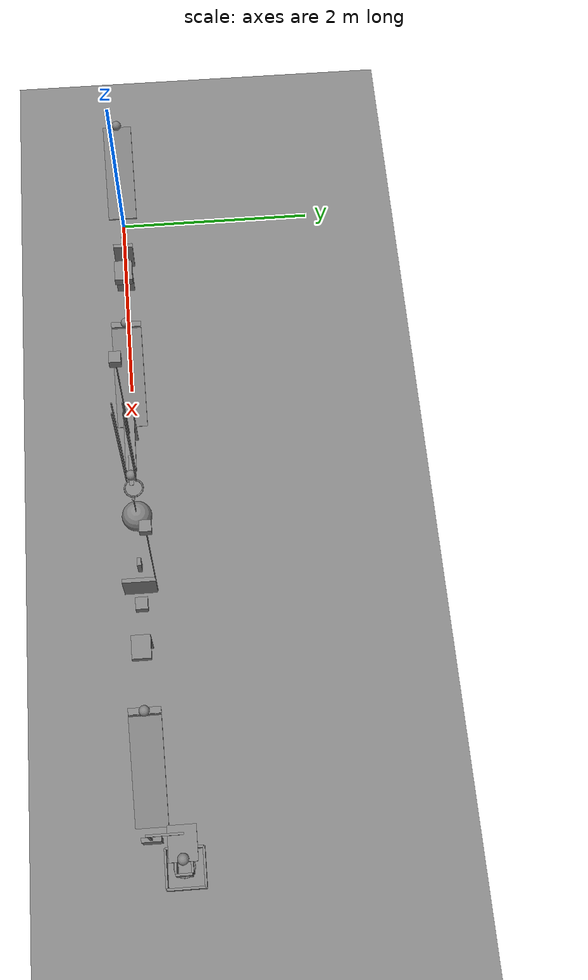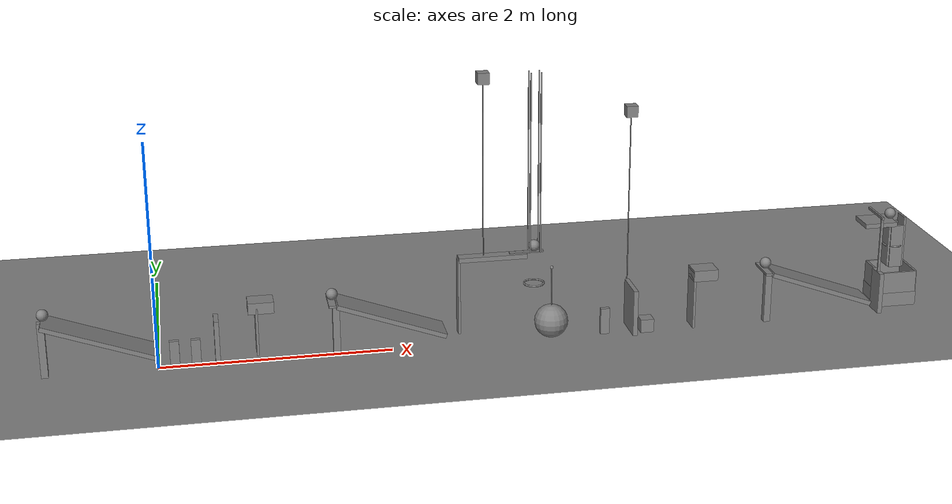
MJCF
<mujoco model="revised_passive_ramp_and_pendulum_chain">
  <compiler angle="radian"/>
  <option timestep="0.002"/>
  <worldbody>
    <geom name="floor" type="plane" size="18 18 0.1" friction="0.7 0 0"/>
    <body name="ramp1">
      <geom name="ramp1_deck" type="box" pos="-0.469846 0 0.32101" size="0.5 0.15 0.02" euler="0 0.349066 0" friction="0.7 0 0" solref="0.01 0.690107"/>
      <geom name="ramp1_leg" type="box" pos="-0.939693 0 0.24601" size="0.03 0.03 0.24601" friction="0.7 0 0" solref="0.01 0.690107"/>
    </body>
    <body name="ball1" pos="-0.915751 0 0.557799">
      <freejoint/>
      <geom name="ball1" type="sphere" pos="0 0 0" size="0.05" mass="0.2" condim="6" friction="0.7 0 0" solref="0.01 0.690107"/>
    </body>
    <body name="domino1" pos="0.14 0 0.12">
      <freejoint/>
      <geom name="domino1" type="box" pos="0 0 0" size="0.04 0.02 0.12" mass="0.25" friction="0.7 0 0" solref="0.01 0.690107"/>
    </body>
    <body name="domino2" pos="0.32 0 0.12">
      <freejoint/>
      <geom name="domino2" type="box" pos="0 0 0" size="0.04 0.02 0.12" mass="0.25" friction="0.7 0 0" solref="0.01 0.690107"/>
    </body>
    <body name="flap1" pos="0.5 0 0.02">
      <joint name="flap1_hinge" type="hinge" pos="0 0 0" axis="0 1 0" limited="true" range="0 1.13446" damping="0.04"/>
      <geom name="flap1" type="box" pos="0 0 0.2" size="0.02 0.1 0.2" mass="0.3" friction="0.7 0 0" solref="0.01 0.690107"/>
    </body>
    <body name="cart1" pos="0.88 0 0.510815">
      <joint name="cart1_slide" type="slide" pos="0 0 0" axis="1 0 0" limited="true" range="0 0.6" damping="0.2"/>
      <geom name="cart1" type="box" pos="0 0 0" size="0.11 0.09 0.05" mass="0.49" friction="0.7 0 0" solref="0.01 0.690107"/>
      <geom name="cart1 striker" type="box" pos="-0.04 0 -0.215815" size="0.01 0.09 0.215" mass="0.01" friction="0.7 0 0" solref="0.01 0.690107"/>
    </body>
    <body name="ramp2">
      <geom name="ramp2_deck" type="box" pos="1.98985 0 0.32101" size="0.5 0.15 0.02" euler="0 0.349066 0" friction="0.7 0 0" solref="0.01 0.690107"/>
      <geom name="ramp2_leg" type="box" pos="1.52 0 0.24601" size="0.03 0.03 0.24601" friction="0.7 0 0" solref="0.01 0.690107"/>
    </body>
    <body name="ramp2 staging pad">
      <geom name="ramp2 staging pad" type="box" pos="1.48 0 0.500815" size="0.03 0.15 0.01" friction="0.7 0 0" solref="0.01 0.690107"/>
    </body>
    <body name="ball2" pos="1.49 0 0.560815">
      <freejoint/>
      <geom name="ball2" type="sphere" pos="0 0 0" size="0.05" mass="0.2" condim="6" friction="0.7 0 0" solref="0.01 0.690107"/>
    </body>
    <body name="lever1" pos="2.88969 0 0.8">
      <joint name="lever1_hinge" type="hinge" pos="0 0 0" axis="0 1 0" limited="true" range="-0.785398 0" damping="0.04"/>
      <geom name="lever1" type="box" pos="0 0 0" size="0.3 0.05 0.02" mass="0.187" friction="0.7 0 0" solref="0.01 0.690107"/>
      <geom name="lever1 striker" type="box" pos="-0.3 0 -0.34" size="0.01 0.05 0.34" mass="0.005" friction="0.7 0 0" solref="0.01 0.690107"/>
      <geom name="lever1 carrier" type="box" pos="0.3 0 0.025" size="0.15 0.02 0.005" mass="0.005" friction="0.7 0 0" solref="0.01 0.690107"/>
      <geom name="lever1 counterweight" type="box" pos="-0.08 0 1.6" size="0.05 0.05 0.05" mass="0.3" friction="0.7 0 0" solref="0.01 0.690107"/>
      <geom name="lever1 counterweight rod" type="capsule" size="0.005" fromto="-0.08 0 0 -0.08 0 1.55" mass="0.003" friction="0.7 0 0" solref="0.01 0.690107"/>
    </body>
    <body name="ball3" pos="3.25969 0 0.88">
      <freejoint/>
      <geom name="ball3" type="sphere" pos="0 0 0" size="0.05" mass="0.2" condim="6" friction="0.7 0 0" solref="0.01 0.690107"/>
    </body>
    <body name="ring1">
      <geom name="ring1_00" type="capsule" size="0.008" fromto="3.34769 0 0.53 3.34099 0.0336761 0.53" friction="0.7 0 0" solref="0.01 0.690107"/>
      <geom name="ring1_01" type="capsule" size="0.008" fromto="3.34099 0.0336761 0.53 3.32192 0.0622254 0.53" friction="0.7 0 0" solref="0.01 0.690107"/>
      <geom name="ring1_02" type="capsule" size="0.008" fromto="3.32192 0.0622254 0.53 3.29337 0.0813014 0.53" friction="0.7 0 0" solref="0.01 0.690107"/>
      <geom name="ring1_03" type="capsule" size="0.008" fromto="3.29337 0.0813014 0.53 3.25969 0.088 0.53" friction="0.7 0 0" solref="0.01 0.690107"/>
      <geom name="ring1_04" type="capsule" size="0.008" fromto="3.25969 0.088 0.53 3.22602 0.0813014 0.53" friction="0.7 0 0" solref="0.01 0.690107"/>
      <geom name="ring1_05" type="capsule" size="0.008" fromto="3.22602 0.0813014 0.53 3.19747 0.0622254 0.53" friction="0.7 0 0" solref="0.01 0.690107"/>
      <geom name="ring1_06" type="capsule" size="0.008" fromto="3.19747 0.0622254 0.53 3.17839 0.0336761 0.53" friction="0.7 0 0" solref="0.01 0.690107"/>
      <geom name="ring1_07" type="capsule" size="0.008" fromto="3.17839 0.0336761 0.53 3.17169 1.07769e-17 0.53" friction="0.7 0 0" solref="0.01 0.690107"/>
      <geom name="ring1_08" type="capsule" size="0.008" fromto="3.17169 1.07769e-17 0.53 3.17839 -0.0336761 0.53" friction="0.7 0 0" solref="0.01 0.690107"/>
      <geom name="ring1_09" type="capsule" size="0.008" fromto="3.17839 -0.0336761 0.53 3.19747 -0.0622254 0.53" friction="0.7 0 0" solref="0.01 0.690107"/>
      <geom name="ring1_10" type="capsule" size="0.008" fromto="3.19747 -0.0622254 0.53 3.22602 -0.0813014 0.53" friction="0.7 0 0" solref="0.01 0.690107"/>
      <geom name="ring1_11" type="capsule" size="0.008" fromto="3.22602 -0.0813014 0.53 3.25969 -0.088 0.53" friction="0.7 0 0" solref="0.01 0.690107"/>
      <geom name="ring1_12" type="capsule" size="0.008" fromto="3.25969 -0.088 0.53 3.29337 -0.0813014 0.53" friction="0.7 0 0" solref="0.01 0.690107"/>
      <geom name="ring1_13" type="capsule" size="0.008" fromto="3.29337 -0.0813014 0.53 3.32192 -0.0622254 0.53" friction="0.7 0 0" solref="0.01 0.690107"/>
      <geom name="ring1_14" type="capsule" size="0.008" fromto="3.32192 -0.0622254 0.53 3.34099 -0.0336761 0.53" friction="0.7 0 0" solref="0.01 0.690107"/>
      <geom name="ring1_15" type="capsule" size="0.008" fromto="3.34099 -0.0336761 0.53 3.34769 -2.15538e-17 0.53" friction="0.7 0 0" solref="0.01 0.690107"/>
    </body>
    <body name="ball3 near left guide">
      <geom name="ball3 near left guide" type="box" pos="3.21469 0.045 1.63" size="0.005 0.005 0.8" friction="0.7 0 0" solref="0.01 0.690107"/>
    </body>
    <body name="ball3 near right guide">
      <geom name="ball3 near right guide" type="box" pos="3.21469 -0.045 1.63" size="0.005 0.005 0.8" friction="0.7 0 0" solref="0.01 0.690107"/>
    </body>
    <body name="ball3 far left guide">
      <geom name="ball3 far left guide" type="box" pos="3.30469 0.045 1.63" size="0.005 0.005 0.8" friction="0.7 0 0" solref="0.01 0.690107"/>
    </body>
    <body name="ball3 far right guide">
      <geom name="ball3 far right guide" type="box" pos="3.30469 -0.045 1.63" size="0.005 0.005 0.8" friction="0.7 0 0" solref="0.01 0.690107"/>
    </body>
    <body name="pendulum1" pos="3.41969 0 0.66">
      <joint name="pendulum1_hinge" type="hinge" pos="0 0 0" axis="0 1 0" limited="true" range="-0.698132 0" damping="0.04"/>
      <geom name="pendulum1" type="sphere" pos="0 0 -0.5" size="0.15" mass="0.05" friction="0.7 0 0" solref="0.01 0.690107"/>
      <geom name="pendulum1 rod" type="capsule" size="0.005" fromto="0 0 0 0 0 -0.35" mass="0.05" friction="0.7 0 0" solref="0.01 0.690107"/>
      <geom name="pendulum1 hub" type="sphere" pos="0 0 0" size="0.015" mass="0.25" friction="0.7 0 0" solref="0.01 0.690107"/>
    </body>
    <body name="domino3" pos="3.90709 0 0.12">
      <freejoint/>
      <geom name="domino3" type="box" pos="0 0 0" size="0.04 0.02 0.12" mass="0.25" friction="0.7 0 0" solref="0.01 0.690107"/>
    </body>
    <body name="door1" pos="4.14709 0 0.44">
      <joint name="door1_hinge" type="hinge" pos="0 0 0" axis="0 1 0" limited="true" range="-1.22173 0" damping="0.04"/>
      <geom name="door1" type="box" pos="0 0 -0.21" size="0.02 0.16 0.21" mass="0.24" friction="0.7 0 0" solref="0.01 0.690107"/>
      <geom name="door1 counterweight" type="box" pos="0 0.16 1.56" size="0.05 0.05 0.05" mass="0.2" friction="0.7 0 0" solref="0.01 0.690107"/>
      <geom name="door1 counterweight rod" type="capsule" size="0.005" fromto="0 0.16 -0.435 0 0.16 1.51" mass="0.01" friction="0.7 0 0" solref="0.01 0.690107"/>
    </body>
    <body name="block1" pos="4.28709 0 0.06">
      <freejoint/>
      <geom name="block1" type="box" pos="0 0 0" size="0.06 0.06 0.06" mass="0.35" friction="0.7 0 0" solref="0.01 0.690107"/>
    </body>
    <body name="cart2" pos="4.80709 0 0.510815">
      <joint name="cart2_slide" type="slide" pos="0 0 0" axis="1 0 0" limited="true" range="0 0.55" damping="0.2"/>
      <geom name="cart2" type="box" pos="0 0 0" size="0.11 0.09 0.05" mass="0.49" friction="0.7 0 0" solref="0.01 0.690107"/>
      <geom name="cart2 striker" type="box" pos="-0.1 0 -0.230815" size="0.01 0.09 0.26" mass="0.01" friction="0.7 0 0" solref="0.01 0.690107"/>
    </body>
    <body name="ramp3">
      <geom name="ramp3_deck" type="box" pos="5.88693 0 0.32101" size="0.5 0.15 0.02" euler="0 0.349066 0" friction="0.7 0 0" solref="0.01 0.690107"/>
      <geom name="ramp3_leg" type="box" pos="5.41709 0 0.24601" size="0.03 0.03 0.24601" friction="0.7 0 0" solref="0.01 0.690107"/>
    </body>
    <body name="ramp3 staging pad">
      <geom name="ramp3 staging pad" type="box" pos="5.37709 0 0.500815" size="0.03 0.15 0.01" friction="0.7 0 0" solref="0.01 0.690107"/>
    </body>
    <body name="ball4" pos="5.38709 0 0.560815">
      <freejoint/>
      <geom name="ball4" type="sphere" pos="0 0 0" size="0.05" mass="0.2" condim="6" friction="0.7 0 0" solref="0.01 0.690107"/>
    </body>
    <body name="flap2" pos="6.47678 0 0.02">
      <joint name="flap2_hinge" type="hinge" pos="0 0 0" axis="0 1 0" limited="true" range="0 1.0472" damping="0.04"/>
      <geom name="flap2" type="box" pos="0 0 0.19" size="0.02 0.09 0.19" mass="0.27" friction="0.7 0 0" solref="0.01 0.690107"/>
      <geom name="flap2 riser" type="box" pos="0 0 0.62" size="0.01 0.01 0.26" mass="0.006" friction="0.7 0 0" solref="0.01 0.690107"/>
      <geom name="flap2 striker" type="box" pos="0 0.14 0.89" size="0.01 0.16 0.01" mass="0.004" friction="0.7 0 0" solref="0.01 0.690107"/>
    </body>
    <body name="shelf1">
      <geom name="shelf1" type="box" pos="6.54678 0.28 0.78" size="0.15 0.125 0.02" friction="0.7 0 0" solref="0.01 0.690107"/>
    </body>
    <body name="ball5" pos="6.67678 0.28 0.85">
      <freejoint/>
      <geom name="ball5" type="sphere" pos="0 0 0" size="0.05" mass="0.2" condim="6" friction="0.7 0 0" solref="0.01 0.690107"/>
    </body>
    <body name="ring2">
      <geom name="ring2_00" type="capsule" size="0.008" fromto="6.81478 0.28 0.55 6.80808 0.313676 0.55" friction="0.7 0 0" solref="0.01 0.690107"/>
      <geom name="ring2_01" type="capsule" size="0.008" fromto="6.80808 0.313676 0.55 6.78901 0.342225 0.55" friction="0.7 0 0" solref="0.01 0.690107"/>
      <geom name="ring2_02" type="capsule" size="0.008" fromto="6.78901 0.342225 0.55 6.76046 0.361301 0.55" friction="0.7 0 0" solref="0.01 0.690107"/>
      <geom name="ring2_03" type="capsule" size="0.008" fromto="6.76046 0.361301 0.55 6.72678 0.368 0.55" friction="0.7 0 0" solref="0.01 0.690107"/>
      <geom name="ring2_04" type="capsule" size="0.008" fromto="6.72678 0.368 0.55 6.6931 0.361301 0.55" friction="0.7 0 0" solref="0.01 0.690107"/>
      <geom name="ring2_05" type="capsule" size="0.008" fromto="6.6931 0.361301 0.55 6.66456 0.342225 0.55" friction="0.7 0 0" solref="0.01 0.690107"/>
      <geom name="ring2_06" type="capsule" size="0.008" fromto="6.66456 0.342225 0.55 6.64548 0.313676 0.55" friction="0.7 0 0" solref="0.01 0.690107"/>
      <geom name="ring2_07" type="capsule" size="0.008" fromto="6.64548 0.313676 0.55 6.63878 0.28 0.55" friction="0.7 0 0" solref="0.01 0.690107"/>
      <geom name="ring2_08" type="capsule" size="0.008" fromto="6.63878 0.28 0.55 6.64548 0.246324 0.55" friction="0.7 0 0" solref="0.01 0.690107"/>
      <geom name="ring2_09" type="capsule" size="0.008" fromto="6.64548 0.246324 0.55 6.66456 0.217775 0.55" friction="0.7 0 0" solref="0.01 0.690107"/>
      <geom name="ring2_10" type="capsule" size="0.008" fromto="6.66456 0.217775 0.55 6.6931 0.198699 0.55" friction="0.7 0 0" solref="0.01 0.690107"/>
      <geom name="ring2_11" type="capsule" size="0.008" fromto="6.6931 0.198699 0.55 6.72678 0.192 0.55" friction="0.7 0 0" solref="0.01 0.690107"/>
      <geom name="ring2_12" type="capsule" size="0.008" fromto="6.72678 0.192 0.55 6.76046 0.198699 0.55" friction="0.7 0 0" solref="0.01 0.690107"/>
      <geom name="ring2_13" type="capsule" size="0.008" fromto="6.76046 0.198699 0.55 6.78901 0.217775 0.55" friction="0.7 0 0" solref="0.01 0.690107"/>
      <geom name="ring2_14" type="capsule" size="0.008" fromto="6.78901 0.217775 0.55 6.80808 0.246324 0.55" friction="0.7 0 0" solref="0.01 0.690107"/>
      <geom name="ring2_15" type="capsule" size="0.008" fromto="6.80808 0.246324 0.55 6.81478 0.28 0.55" friction="0.7 0 0" solref="0.01 0.690107"/>
    </body>
    <body name="ball5 far guide">
      <geom name="ball5 far guide" type="box" pos="6.79678 0.28 0.5875" size="0.01 0.07 0.2375" friction="0.7 0 0" solref="0.01 0.690107"/>
    </body>
    <body name="ball5 near guide">
      <geom name="ball5 near guide" type="box" pos="6.65678 0.28 0.55" size="0.01 0.07 0.19" friction="0.7 0 0" solref="0.01 0.690107"/>
    </body>
    <body name="ball5 left guide">
      <geom name="ball5 left guide" type="box" pos="6.72678 0.35 0.55" size="0.06 0.01 0.2" friction="0.7 0 0" solref="0.01 0.690107"/>
    </body>
    <body name="ball5 right guide">
      <geom name="ball5 right guide" type="box" pos="6.72678 0.21 0.55" size="0.06 0.01 0.2" friction="0.7 0 0" solref="0.01 0.690107"/>
    </body>
    <body name="bin pedestal">
      <geom name="bin pedestal" type="box" pos="6.72678 0.28 0.065" size="0.18 0.18 0.065" friction="0.7 0 0" solref="0.01 0.690107"/>
    </body>
    <body name="bin1">
      <geom name="bin1_base" type="box" pos="6.72678 0.28 0.14" size="0.17 0.17 0.01" friction="0.7 0 0" solref="0.01 0.690107"/>
      <geom name="bin1_near_wall" type="box" pos="6.55678 0.28 0.23" size="0.01 0.17 0.1" friction="0.7 0 0" solref="0.01 0.690107"/>
      <geom name="bin1_far_wall" type="box" pos="6.89678 0.28 0.23" size="0.01 0.17 0.1" friction="0.7 0 0" solref="0.01 0.690107"/>
      <geom name="bin1_left_wall" type="box" pos="6.72678 0.45 0.23" size="0.17 0.01 0.1" friction="0.7 0 0" solref="0.01 0.690107"/>
      <geom name="bin1_right_wall" type="box" pos="6.72678 0.11 0.23" size="0.17 0.01 0.1" friction="0.7 0 0" solref="0.01 0.690107"/>
    </body>
  </worldbody>
  <keyframe>
    <key name="start" qpos="-0.915751 0 0.557799 1 0 0 0 0.14 0 0.12 1 0 0 0 0.32 0 0.12 1 0 0 0 0 0 1.49 0 0.560815 1 0 0 0 0 3.25969 0 0.88 1 0 0 0 0 3.90709 0 0.12 1 0 0 0 0 4.28709 0 0.06 1 0 0 0 0 5.38709 0 0.560815 1 0 0 0 0 6.67678 0.28 0.85 1 0 0 0" qvel="0 0 0 0 0 0 0 0 0 0 0 0 0 0 0 0 0 0 0 0 0 0 0 0 0 0 0 0 0 0 0 0 0 0 0 0 0 0 0 0 0 0 0 0 0 0 0 0 0 0 0 0 0 0 0 0 0 0 0 0 0"/>
  </keyframe>
</mujoco>
